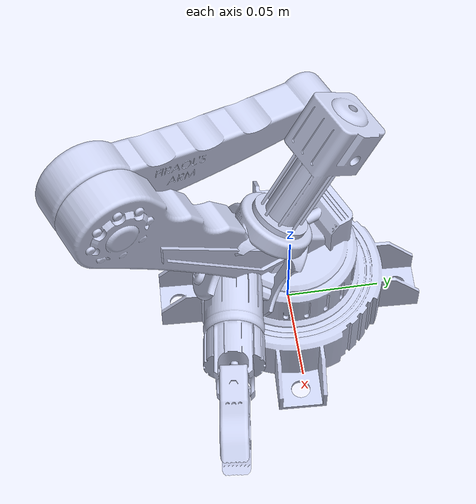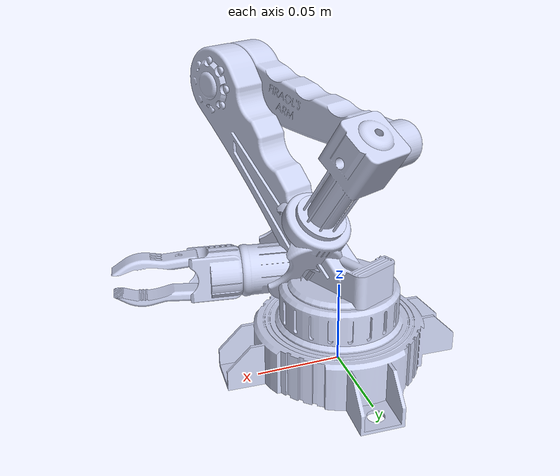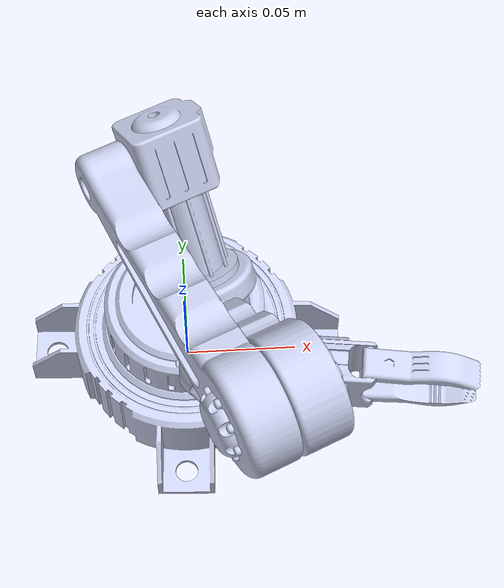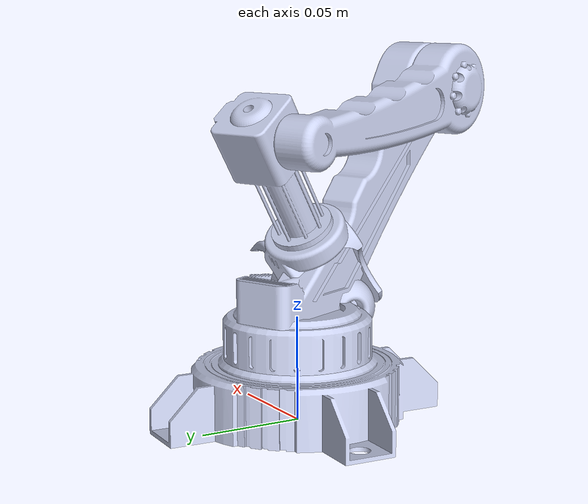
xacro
<?xml version="1.0"?>
<robot xmlns:xacro="http://www.ros.org/wiki/xacro" name="robotic_arm">

  <!-- Composability args: set to false when including in a combined robot -->
  <xacro:arg name="include_world"        default="true"/>
  <xacro:arg name="include_ros2_control" default="true"/>

  <xacro:if value="$(arg include_world)">
  <!-- ═══════ world ══════════════════════════════════════════════ -->
  <!-- Massless anchor so RViz/Nav2 have a stable "world" fixed frame. -->
  <link name="world"/>

  <joint name="world_joint" type="fixed">
    <origin xyz="0 0 0.029710" rpy="0.129355 -0.057284 -0.003711"/>
    <parent link="world"/>
    <child  link="base_link"/>
  </joint>
  </xacro:if>

  <!-- ═══════ base_link ═══════════════════════════════════════════ -->
  <link name="base_link">
    <inertial>
      <!-- COM is in SW world coordinates — subtract (0.70796, −1.3272, 0.9075)
           before using this link in a dynamics simulation. -->
      <origin xyz="0.70723 0.89479 1.3289" rpy="0 0 0"/>
      <mass value="0.19084"/>
      <inertia ixx="0.00014713" ixy="6.8937E-06"  ixz="-8.9675E-07"
               iyy="0.00026594" iyz="-1.5506E-05" izz="0.00014875"/>
    </inertial>
    <!-- Visual/collision shifted by −(old joint0 xyz) so the base plate mesh
         renders adjacent to the arm, which now lives at world origin. -->
    <visual>
      <origin xyz="-0.70796 1.3272 -0.9075" rpy="0 0 0"/>
      <geometry>
        <mesh filename="package://robotic_arm_description/meshes/base_link.STL"/>
      </geometry>
      <material name="arm_color">
        <color rgba="0.79216 0.81961 0.93333 1"/>
      </material>
    </visual>
    <collision>
      <origin xyz="-0.70796 1.3272 -0.9075" rpy="0 0 0"/>
      <geometry>
        <mesh filename="package://robotic_arm_description/meshes/base_link.STL"/>
      </geometry>
    </collision>
  </link>

  <!-- ═══════ lower_arm ══════════════════════════════════════════ -->
  <link name="lower_arm">
    <inertial>
      <origin xyz="-0.034789 0.052024 4.4209E-05" rpy="0 0 0"/>
      <mass value="0.19613"/>
      <inertia ixx="0.00038821" ixy="0.00032912"  ixz="5.654E-07"
               iyy="0.00038835" iyz="-6.0057E-07" izz="0.00072024"/>
    </inertial>
    <visual>
      <origin xyz="0 0 0" rpy="0 0 0"/>
      <geometry>
        <mesh filename="package://robotic_arm_description/meshes/lower_arm.STL"/>
      </geometry>
      <material name="arm_color">
        <color rgba="0.79216 0.81961 0.93333 1"/>
      </material>
    </visual>
    <collision>
      <origin xyz="0 0 0" rpy="0 0 0"/>
      <geometry>
        <mesh filename="package://robotic_arm_description/meshes/lower_arm.STL"/>
      </geometry>
    </collision>
  </link>

  <joint name="joint0" type="revolute">
    <origin xyz="0 0 0" rpy="1.6757 0.094954 1.9904"/>
    <parent link="base_link"/>
    <child  link="lower_arm"/>
    <axis xyz="0 1 0"/>
    <limit lower="-3.14" upper="3.14" effort="10" velocity="1"/>
  </joint>

  <!-- ═══════ upper_arm ══════════════════════════════════════════ -->
  <link name="upper_arm">
    <inertial>
      <origin xyz="0.030278 0.032273 -0.019925" rpy="0 0 0"/>
      <mass value="0.081835"/>
      <inertia ixx="9.6287E-05"  ixy="-7.8192E-05" ixz="-1.6357E-06"
               iyy="7.9895E-05"  iyz="-1.7788E-06"  izz="0.00017026"/>
    </inertial>
    <visual>
      <origin xyz="0 0 0" rpy="0 0 0"/>
      <geometry>
        <mesh filename="package://robotic_arm_description/meshes/upper_arm.STL"/>
      </geometry>
      <material name="arm_color">
        <color rgba="0.79216 0.81961 0.93333 1"/>
      </material>
    </visual>
    <collision>
      <origin xyz="0 0 0" rpy="0 0 0"/>
      <geometry>
        <mesh filename="package://robotic_arm_description/meshes/upper_arm.STL"/>
      </geometry>
    </collision>
  </link>

  <!-- joint1 — lower_arm → upper_arm  UNCHANGED -->
  <joint name="joint1" type="revolute">
    <origin xyz="-0.1 0.12129 0" rpy="0 0 -0.97771"/>
    <parent link="lower_arm"/>
    <child  link="upper_arm"/>
    <axis xyz="0 0 1"/>
    <limit lower="-3.14" upper="3.14" effort="10" velocity="1"/>
  </joint>

  <!-- ═══════ shoulder_drive ══════════════════════════════════════ -->
  <link name="shoulder_drive">
    <inertial>
      <origin xyz="0.0053519 -4.4717E-05 0.010345" rpy="0 0 0"/>
      <mass value="0.036284"/>
      <inertia ixx="1.6274E-05"  ixy="-5.7101E-10" ixz="2.109E-07"
               iyy="1.6305E-05"  iyz="-1.2692E-08"  izz="4.537E-06"/>
    </inertial>
    <visual>
      <origin xyz="0 0 0" rpy="0 0 0"/>
      <geometry>
        <mesh filename="package://robotic_arm_description/meshes/shoulder_drive.STL"/>
      </geometry>
      <material name="arm_color">
        <color rgba="0.79216 0.81961 0.93333 1"/>
      </material>
    </visual>
    <collision>
      <origin xyz="0 0 0" rpy="0 0 0"/>
      <geometry>
        <mesh filename="package://robotic_arm_description/meshes/shoulder_drive.STL"/>
      </geometry>
    </collision>
  </link>

  <!-- joint2 — upper_arm → shoulder_drive  UNCHANGED -->
  <joint name="joint2" type="revolute">
    <origin xyz="0.08 0.09 0" rpy="1.9556 -1.5708 0"/>
    <parent link="upper_arm"/>
    <child  link="shoulder_drive"/>
    <axis xyz="1 0 0"/>
    <limit lower="-3.14" upper="3.14" effort="10" velocity="1"/>
  </joint>

  <!-- ═══════ rotary_yoke ══════════════════════════════════════════ -->
  <link name="rotary_yoke">
    <inertial>
      <origin xyz="0.0034544 -8.8589E-10 -1.5216E-10" rpy="0 0 0"/>
      <mass value="0.015723"/>
      <inertia ixx="4.9761E-06"  ixy="2.7011E-13"  ixz="1.3689E-13"
               iyy="8.6886E-06"  iyz="1.0867E-12"   izz="6.6823E-06"/>
    </inertial>
    <visual>
      <origin xyz="0 0 0" rpy="0 0 0"/>
      <geometry>
        <mesh filename="package://robotic_arm_description/meshes/rotary_yoke.STL"/>
      </geometry>
      <material name="arm_color">
        <color rgba="0.79216 0.81961 0.93333 1"/>
      </material>
    </visual>
    <collision>
      <origin xyz="0 0 0" rpy="0 0 0"/>
      <geometry>
        <mesh filename="package://robotic_arm_description/meshes/rotary_yoke.STL"/>
      </geometry>
    </collision>
  </link>

  <!-- joint3 — shoulder_drive → rotary_yoke  UNCHANGED -->
  <joint name="joint3" type="revolute">
    <origin xyz="0.005 0 0.077514" rpy="1.1002 1.5708 0"/>
    <parent link="shoulder_drive"/>
    <child  link="rotary_yoke"/>
    <axis xyz="1 0 0"/>
    <limit lower="-3.14" upper="3.14" effort="10" velocity="1"/>
  </joint>

  <!-- ═══════ wrist_module ══════════════════════════════════════════ -->
  <link name="wrist_module">
    <inertial>
      <origin xyz="0.0052933 6.3561E-10 3.6458E-10" rpy="0 0 0"/>
      <mass value="0.034187"/>
      <inertia ixx="3.7152E-06"  ixy="4.4265E-13"   ixz="1.2545E-13"
               iyy="8.9897E-06"  iyz="-9.6955E-13"  izz="9.0316E-06"/>
    </inertial>
    <visual>
      <origin xyz="0 0 0" rpy="0 0 0"/>
      <geometry>
        <mesh filename="package://robotic_arm_description/meshes/wrist_module.STL"/>
      </geometry>
      <material name="arm_color">
        <color rgba="0.79216 0.81961 0.93333 1"/>
      </material>
    </visual>
    <collision>
      <origin xyz="0 0 0" rpy="0 0 0"/>
      <geometry>
        <mesh filename="package://robotic_arm_description/meshes/wrist_module.STL"/>
      </geometry>
    </collision>
  </link>

  <!-- joint4 — rotary_yoke → wrist_module  UNCHANGED -->
  <joint name="joint4" type="revolute">
    <origin xyz="-0.025486 0 0" rpy="0 0 1.8687"/>
    <parent link="rotary_yoke"/>
    <child  link="wrist_module"/>
    <axis xyz="0 0 1"/>
    <limit lower="-3.14" upper="3.14" effort="8" velocity="1"/>
  </joint>

  <!-- ═══════ gripper_actuator ══════════════════════════════════════ -->
  <link name="gripper_actuator">
    <inertial>
      <origin xyz="-3.7917E-09 -9.0172E-09 0.0059505" rpy="0 0 0"/>
      <mass value="0.015789"/>
      <inertia ixx="1.6581E-06" ixy="4.1866E-12"  ixz="5.5925E-13"
               iyy="1.6959E-06" iyz="8.6177E-13"   izz="1.8592E-06"/>
    </inertial>
    <visual>
      <origin xyz="0 0 0" rpy="0 0 0"/>
      <geometry>
        <mesh filename="package://robotic_arm_description/meshes/gripper_actuator.STL"/>
      </geometry>
      <material name="arm_color">
        <color rgba="0.79216 0.81961 0.93333 1"/>
      </material>
    </visual>
    <collision>
      <origin xyz="0 0 0" rpy="0 0 0"/>
      <geometry>
        <mesh filename="package://robotic_arm_description/meshes/gripper_actuator.STL"/>
      </geometry>
    </collision>
  </link>

  <!-- joint5 — wrist_module → gripper_actuator  UNCHANGED -->
  <joint name="joint5" type="revolute">
    <origin xyz="0.03356 0 0" rpy="-1.5708 0.5658 -1.5708"/>
    <parent link="wrist_module"/>
    <child  link="gripper_actuator"/>
    <axis xyz="0 0 1"/>
    <limit lower="-3.14" upper="3.14" effort="10" velocity="1"/>
  </joint>

  <!-- ═══════ gripper_1 (left finger) ══════════════════════════════ -->
  <link name="gripper_1">
    <inertial>
      <origin xyz="0.018895 0.0012108 5.4008E-08" rpy="0 0 0"/>
      <mass value="0.0029088"/>
      <inertia ixx="5.5054E-08"  ixy="-3.6466E-08" ixz="-5.9482E-12"
               iyy="5.6195E-07"  iyz="6.3354E-14"   izz="5.2896E-07"/>
    </inertial>
    <visual>
      <origin xyz="0 0 0" rpy="0 0 0"/>
      <geometry>
        <mesh filename="package://robotic_arm_description/meshes/gripper_1.STL"/>
      </geometry>
      <material name="arm_color">
        <color rgba="0.79216 0.81961 0.93333 1"/>
      </material>
    </visual>
    <collision>
      <origin xyz="0 0 0" rpy="0 0 0"/>
      <geometry>
        <mesh filename="package://robotic_arm_description/meshes/gripper_1.STL"/>
      </geometry>
    </collision>
  </link>

  <joint name="joint6" type="revolute">
    <origin xyz="-0.011 0 0.02344" rpy="1.5708 -1.5034 0"/>
    <parent link="gripper_actuator"/>
    <child  link="gripper_1"/>
    <axis xyz="0 0 1"/>
    <limit lower="-0.093" upper="1.57" effort="2" velocity="1"/>
  </joint>

  <!-- ═══════ gripper_2 (right finger) ══════════════════════════════ -->
  <link name="gripper_2">
    <inertial>
      <origin xyz="0.018895 0.0012108 5.2626E-08" rpy="0 0 0"/>
      <mass value="0.0029088"/>
      <inertia ixx="5.5055E-08"  ixy="-3.6466E-08" ixz="-5.9756E-12"
               iyy="5.6195E-07"  iyz="3.1914E-14"   izz="5.2896E-07"/>
    </inertial>
    <visual>
      <origin xyz="0 0 0" rpy="0 0 0"/>
      <geometry>
        <mesh filename="package://robotic_arm_description/meshes/gripper_2.STL"/>
      </geometry>
      <material name="arm_color">
        <color rgba="0.79216 0.81961 0.93333 1"/>
      </material>
    </visual>
    <collision>
      <origin xyz="0 0 0" rpy="0 0 0"/>
      <geometry>
        <mesh filename="package://robotic_arm_description/meshes/gripper_2.STL"/>
      </geometry>
    </collision>
  </link>

  <joint name="joint7" type="revolute">
    <origin xyz="0.011 0 0.02344" rpy="1.5708 -1.5034 3.1416"/>
    <parent link="gripper_actuator"/>
    <child  link="gripper_2"/>
    <axis xyz="0 0 1"/>
    <limit lower="-0.093" upper="1.57" effort="2" velocity="1"/>
    <mimic joint="joint6" multiplier="1" offset="0"/>
  </joint>

  <xacro:if value="$(arg include_ros2_control)">
  <ros2_control name="robotic_arm_system" type="system">
    <hardware>
      <plugin>mock_components/GenericSystem</plugin>
    </hardware>

    <joint name="joint0">
      <command_interface name="position">
        <param name="min">-3.14</param><param name="max">3.14</param>
      </command_interface>
      <state_interface name="position"><param name="initial_value">0.0</param></state_interface>
      <state_interface name="velocity"><param name="initial_value">0.0</param></state_interface>
    </joint>
    <joint name="joint1">
      <command_interface name="position">
        <param name="min">-3.14</param><param name="max">3.14</param>
      </command_interface>
      <state_interface name="position"><param name="initial_value">0.0</param></state_interface>
      <state_interface name="velocity"><param name="initial_value">0.0</param></state_interface>
    </joint>
    <joint name="joint2">
      <command_interface name="position">
        <param name="min">-3.14</param><param name="max">3.14</param>
      </command_interface>
      <state_interface name="position"><param name="initial_value">0.0</param></state_interface>
      <state_interface name="velocity"><param name="initial_value">0.0</param></state_interface>
    </joint>
    <joint name="joint3">
      <command_interface name="position">
        <param name="min">-3.14</param><param name="max">3.14</param>
      </command_interface>
      <state_interface name="position"><param name="initial_value">0.0</param></state_interface>
      <state_interface name="velocity"><param name="initial_value">0.0</param></state_interface>
    </joint>
    <joint name="joint4">
      <command_interface name="position">
        <param name="min">-3.14</param><param name="max">3.14</param>
      </command_interface>
      <state_interface name="position"><param name="initial_value">0.0</param></state_interface>
      <state_interface name="velocity"><param name="initial_value">0.0</param></state_interface>
    </joint>
    <joint name="joint5">
      <command_interface name="position">
        <param name="min">-3.14</param><param name="max">3.14</param>
      </command_interface>
      <state_interface name="position"><param name="initial_value">0.0</param></state_interface>
      <state_interface name="velocity"><param name="initial_value">0.0</param></state_interface>
    </joint>
    <joint name="joint6">
      <command_interface name="position">
        <param name="min">-0.093</param><param name="max">1.57</param>
      </command_interface>
      <state_interface name="position"><param name="initial_value">0.0</param></state_interface>
      <state_interface name="velocity"><param name="initial_value">0.0</param></state_interface>
    </joint>
    <!-- joint7 is a URDF mimic joint: ros2_control 4.x forbids command interfaces on mimic joints. -->
    <joint name="joint7">
      <state_interface name="position"><param name="initial_value">0.0</param></state_interface>
      <state_interface name="velocity"><param name="initial_value">0.0</param></state_interface>
    </joint>
  </ros2_control>
  </xacro:if>

</robot>
